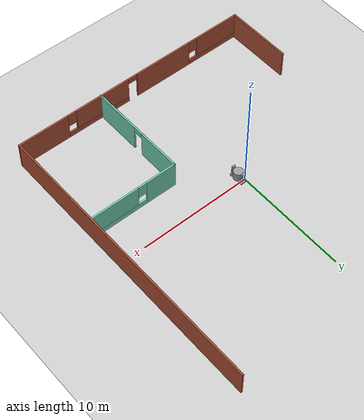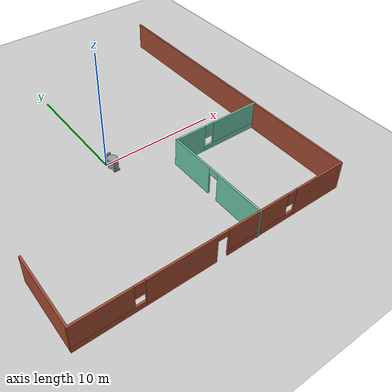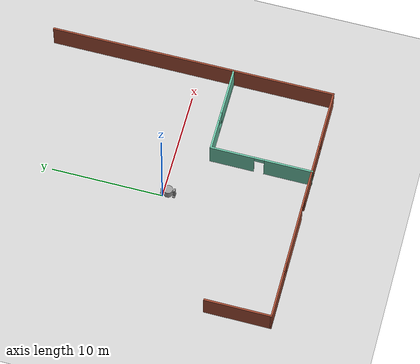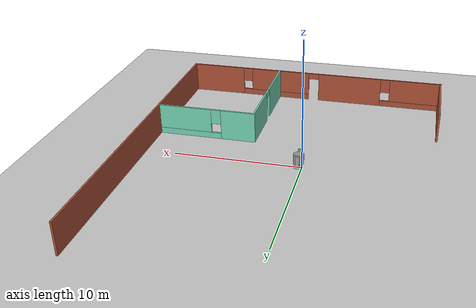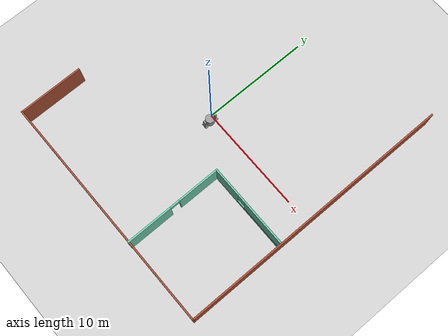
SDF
<sdf version="1.6">
 <world name="default">
  <model name="ground_plane">
   <static>1</static>
   <link name="link">
    <collision name="collision">
     <geometry><plane><normal>0 0 1</normal><size>100 100</size></plane></geometry>
     <surface>
      <contact><collide_bitmask>65535</collide_bitmask></contact>
      <friction><ode><mu>100</mu><mu2>50</mu2></ode></friction>
     </surface>
    </collision>
    <visual name="visual">
     <cast_shadows>0</cast_shadows>
     <geometry><plane><normal>0 0 1</normal><size>100 100</size></plane></geometry>
     <material>
      <script><uri>file://media/materials/scripts/gazebo.material</uri><name>Gazebo/Grey</name></script>
     </material>
    </visual>
   </link>
  </model>
  <model name="robot3">
   <link name="link_2">
    <pose>0.005 -0 -0.064976 0 -0 0</pose>
    <inertial>
     <mass>1</mass>
     <inertia><ixx>0.145833</ixx><ixy>0</ixy><ixz>0</ixz><iyy>0.145833</iyy><iyz>0</iyz><izz>0.125</izz></inertia>
    </inertial>
    <visual name="visual">
     <geometry><cylinder><radius>0.4</radius><length>0.8</length></cylinder></geometry>
     <material>
      <lighting>1</lighting>
      <script><uri>file://media/materials/scripts/gazebo.material</uri><name>Gazebo/Grey</name></script>
      <shader type="pixel"><normal_map>__default__</normal_map></shader>
      <ambient>0.3 0.3 0.3 1</ambient>
      <diffuse>0.7 0.7 0.7 1</diffuse>
      <specular>0.01 0.01 0.01 1</specular>
      <emissive>0 0 0 1</emissive>
     </material>
    </visual>
    <collision name="collision">
     <geometry><cylinder><radius>0.4</radius><length>0.8</length></cylinder></geometry>
     <surface>
      <friction>
       <ode><mu>1</mu><mu2>1</mu2><fdir1>0 0 0</fdir1><slip1>0</slip1><slip2>0</slip2></ode>
       <torsional>
        <coefficient>1</coefficient>
        <patch_radius>0</patch_radius>
        <surface_radius>0</surface_radius>
        <use_patch_radius>1</use_patch_radius>
        <ode><slip>0</slip></ode>
       </torsional>
      </friction>
      <bounce><restitution_coefficient>0</restitution_coefficient><threshold>1e+06</threshold></bounce>
      <contact>
       <collide_without_contact>0</collide_without_contact>
       <collide_without_contact_bitmask>1</collide_without_contact_bitmask>
       <collide_bitmask>1</collide_bitmask>
       <ode>
        <soft_cfm>0</soft_cfm>
        <soft_erp>0.2</soft_erp>
        <kp>1e+13</kp>
        <kd>1</kd>
        <max_vel>0.01</max_vel>
        <min_depth>0</min_depth>
       </ode>
       <bullet>
        <split_impulse>1</split_impulse>
        <split_impulse_penetration_threshold>-0.01</split_impulse_penetration_threshold>
        <soft_cfm>0</soft_cfm>
        <soft_erp>0.2</soft_erp>
        <kp>1e+13</kp>
        <kd>1</kd>
       </bullet>
      </contact>
     </surface>
    </collision>
   </link>
   <link name="link_0">
    <pose>0.00499 0.565134 -0.515032 -0.000625 0 -0.000608</pose>
    <inertial>
     <mass>1</mass>
     <inertia>
      <ixx>0.166667</ixx>
      <ixy>0</ixy>
      <ixz>0</ixz>
      <iyy>0.166667</iyy>
      <iyz>0</iyz>
      <izz>0.166667</izz>
     </inertia>
    </inertial>
    <visual name="visual">
     <geometry><box><size>0.5 0.25 0.1</size></box></geometry>
     <material>
      <lighting>1</lighting>
      <script><uri>file://media/materials/scripts/gazebo.material</uri><name>Gazebo/Grey</name></script>
      <shader type="pixel"><normal_map>__default__</normal_map></shader>
      <ambient>0.3 0.3 0.3 1</ambient>
      <diffuse>0.7 0.7 0.7 1</diffuse>
      <specular>0.01 0.01 0.01 1</specular>
      <emissive>0 0 0 1</emissive>
     </material>
    </visual>
    <collision name="collision">
     <geometry><box><size>0.5 0.25 0.1</size></box></geometry>
     <surface>
      <friction>
       <ode><mu>1</mu><mu2>1</mu2><fdir1>0 0 0</fdir1><slip1>0</slip1><slip2>0</slip2></ode>
       <torsional>
        <coefficient>1</coefficient>
        <patch_radius>0</patch_radius>
        <surface_radius>0</surface_radius>
        <use_patch_radius>1</use_patch_radius>
        <ode><slip>0</slip></ode>
       </torsional>
      </friction>
      <bounce><restitution_coefficient>0</restitution_coefficient><threshold>1e+06</threshold></bounce>
      <contact>
       <collide_without_contact>0</collide_without_contact>
       <collide_without_contact_bitmask>1</collide_without_contact_bitmask>
       <collide_bitmask>1</collide_bitmask>
       <ode>
        <soft_cfm>0</soft_cfm>
        <soft_erp>0.2</soft_erp>
        <kp>1e+13</kp>
        <kd>1</kd>
        <max_vel>0.01</max_vel>
        <min_depth>0</min_depth>
       </ode>
       <bullet>
        <split_impulse>1</split_impulse>
        <split_impulse_penetration_threshold>-0.01</split_impulse_penetration_threshold>
        <soft_cfm>0</soft_cfm>
        <soft_erp>0.2</soft_erp>
        <kp>1e+13</kp>
        <kd>1</kd>
       </bullet>
      </contact>
     </surface>
    </collision>
   </link>
   <link name="link_0_clone">
    <pose>0.00499 -0.535072 -0.514954 -0.00125 -1e-06 -0.001216</pose>
    <inertial>
     <mass>1</mass>
     <inertia>
      <ixx>0.166667</ixx>
      <ixy>0</ixy>
      <ixz>0</ixz>
      <iyy>0.166667</iyy>
      <iyz>0</iyz>
      <izz>0.166667</izz>
     </inertia>
    </inertial>
    <visual name="visual">
     <geometry><box><size>0.5 0.25 0.1</size></box></geometry>
     <material>
      <lighting>1</lighting>
      <script><uri>file://media/materials/scripts/gazebo.material</uri><name>Gazebo/Grey</name></script>
      <shader type="pixel"><normal_map>__default__</normal_map></shader>
      <ambient>0.3 0.3 0.3 1</ambient>
      <diffuse>0.7 0.7 0.7 1</diffuse>
      <specular>0.01 0.01 0.01 1</specular>
      <emissive>0 0 0 1</emissive>
     </material>
    </visual>
    <collision name="collision">
     <geometry><box><size>0.5 0.25 0.1</size></box></geometry>
     <surface>
      <friction>
       <ode><mu>1</mu><mu2>1</mu2><fdir1>0 0 0</fdir1><slip1>0</slip1><slip2>0</slip2></ode>
       <torsional>
        <coefficient>1</coefficient>
        <patch_radius>0</patch_radius>
        <surface_radius>0</surface_radius>
        <use_patch_radius>1</use_patch_radius>
        <ode><slip>0</slip></ode>
       </torsional>
      </friction>
      <bounce><restitution_coefficient>0</restitution_coefficient><threshold>1e+06</threshold></bounce>
      <contact>
       <collide_without_contact>0</collide_without_contact>
       <collide_without_contact_bitmask>1</collide_without_contact_bitmask>
       <collide_bitmask>1</collide_bitmask>
       <ode>
        <soft_cfm>0</soft_cfm>
        <soft_erp>0.2</soft_erp>
        <kp>1e+13</kp>
        <kd>1</kd>
        <max_vel>0.01</max_vel>
        <min_depth>0</min_depth>
       </ode>
       <bullet>
        <split_impulse>1</split_impulse>
        <split_impulse_penetration_threshold>-0.01</split_impulse_penetration_threshold>
        <soft_cfm>0</soft_cfm>
        <soft_erp>0.2</soft_erp>
        <kp>1e+13</kp>
        <kd>1</kd>
       </bullet>
      </contact>
     </surface>
    </collision>
   </link>
   <link name="link_3">
    <pose>-0.015 -1e-06 0.194928 1.5707 -0 0</pose>
    <inertial>
     <mass>1</mass>
     <inertia><ixx>0.145833</ixx><ixy>0</ixy><ixz>0</ixz><iyy>0.145833</iyy><iyz>0</iyz><izz>0.125</izz></inertia>
    </inertial>
    <visual name="visual">
     <geometry><cylinder><radius>0.1</radius><length>1.25</length></cylinder></geometry>
     <material>
      <lighting>1</lighting>
      <script><uri>file://media/materials/scripts/gazebo.material</uri><name>Gazebo/Grey</name></script>
      <shader type="pixel"><normal_map>__default__</normal_map></shader>
      <ambient>0.3 0.3 0.3 1</ambient>
      <diffuse>0.7 0.7 0.7 1</diffuse>
      <specular>0.01 0.01 0.01 1</specular>
      <emissive>0 0 0 1</emissive>
     </material>
    </visual>
    <collision name="collision">
     <geometry><cylinder><radius>0.1</radius><length>1.25</length></cylinder></geometry>
     <surface>
      <friction>
       <ode><mu>1</mu><mu2>1</mu2><fdir1>0 0 0</fdir1><slip1>0</slip1><slip2>0</slip2></ode>
       <torsional>
        <coefficient>1</coefficient>
        <patch_radius>0</patch_radius>
        <surface_radius>0</surface_radius>
        <use_patch_radius>1</use_patch_radius>
        <ode><slip>0</slip></ode>
       </torsional>
      </friction>
      <bounce><restitution_coefficient>0</restitution_coefficient><threshold>1e+06</threshold></bounce>
      <contact>
       <collide_without_contact>0</collide_without_contact>
       <collide_without_contact_bitmask>1</collide_without_contact_bitmask>
       <collide_bitmask>1</collide_bitmask>
       <ode>
        <soft_cfm>0</soft_cfm>
        <soft_erp>0.2</soft_erp>
        <kp>1e+13</kp>
        <kd>1</kd>
        <max_vel>0.01</max_vel>
        <min_depth>0</min_depth>
       </ode>
       <bullet>
        <split_impulse>1</split_impulse>
        <split_impulse_penetration_threshold>-0.01</split_impulse_penetration_threshold>
        <soft_cfm>0</soft_cfm>
        <soft_erp>0.2</soft_erp>
        <kp>1e+13</kp>
        <kd>1</kd>
       </bullet>
      </contact>
     </surface>
    </collision>
   </link>
   <link name="link_4">
    <pose>0.005 -0.550011 -0.064976 0 -0 0</pose>
    <inertial>
     <mass>1</mass>
     <inertia>
      <ixx>0.166667</ixx>
      <ixy>0</ixy>
      <ixz>0</ixz>
      <iyy>0.166667</iyy>
      <iyz>0</iyz>
      <izz>0.166667</izz>
     </inertia>
    </inertial>
    <visual name="visual">
     <geometry><box><size>0.3 0.15 1</size></box></geometry>
     <material>
      <lighting>1</lighting>
      <script><uri>file://media/materials/scripts/gazebo.material</uri><name>Gazebo/Grey</name></script>
      <shader type="pixel"><normal_map>__default__</normal_map></shader>
      <ambient>0.3 0.3 0.3 1</ambient>
      <diffuse>0.7 0.7 0.7 1</diffuse>
      <specular>0.01 0.01 0.01 1</specular>
      <emissive>0 0 0 1</emissive>
     </material>
    </visual>
    <collision name="collision">
     <geometry><box><size>0.3 0.15 1</size></box></geometry>
     <surface>
      <friction>
       <ode><mu>1</mu><mu2>1</mu2><fdir1>0 0 0</fdir1><slip1>0</slip1><slip2>0</slip2></ode>
       <torsional>
        <coefficient>1</coefficient>
        <patch_radius>0</patch_radius>
        <surface_radius>0</surface_radius>
        <use_patch_radius>1</use_patch_radius>
        <ode><slip>0</slip></ode>
       </torsional>
      </friction>
      <bounce><restitution_coefficient>0</restitution_coefficient><threshold>1e+06</threshold></bounce>
      <contact>
       <collide_without_contact>0</collide_without_contact>
       <collide_without_contact_bitmask>1</collide_without_contact_bitmask>
       <collide_bitmask>1</collide_bitmask>
       <ode>
        <soft_cfm>0</soft_cfm>
        <soft_erp>0.2</soft_erp>
        <kp>1e+13</kp>
        <kd>1</kd>
        <max_vel>0.01</max_vel>
        <min_depth>0</min_depth>
       </ode>
       <bullet>
        <split_impulse>1</split_impulse>
        <split_impulse_penetration_threshold>-0.01</split_impulse_penetration_threshold>
        <soft_cfm>0</soft_cfm>
        <soft_erp>0.2</soft_erp>
        <kp>1e+13</kp>
        <kd>1</kd>
       </bullet>
      </contact>
     </surface>
    </collision>
   </link>
   <link name="link_4_clone">
    <pose>0.005 0.550012 -0.064976 0 -0 0</pose>
    <inertial>
     <mass>1</mass>
     <inertia>
      <ixx>0.166667</ixx>
      <ixy>0</ixy>
      <ixz>0</ixz>
      <iyy>0.166667</iyy>
      <iyz>0</iyz>
      <izz>0.166667</izz>
     </inertia>
    </inertial>
    <visual name="visual">
     <geometry><box><size>0.3 0.15 1</size></box></geometry>
     <material>
      <lighting>1</lighting>
      <script><uri>file://media/materials/scripts/gazebo.material</uri><name>Gazebo/Grey</name></script>
      <shader type="pixel"><normal_map>__default__</normal_map></shader>
      <ambient>0.3 0.3 0.3 1</ambient>
      <diffuse>0.7 0.7 0.7 1</diffuse>
      <specular>0.01 0.01 0.01 1</specular>
      <emissive>0 0 0 1</emissive>
     </material>
    </visual>
    <collision name="collision">
     <geometry><box><size>0.3 0.15 1</size></box></geometry>
     <surface>
      <friction>
       <ode><mu>1</mu><mu2>1</mu2><fdir1>0 0 0</fdir1><slip1>0</slip1><slip2>0</slip2></ode>
       <torsional>
        <coefficient>1</coefficient>
        <patch_radius>0</patch_radius>
        <surface_radius>0</surface_radius>
        <use_patch_radius>1</use_patch_radius>
        <ode><slip>0</slip></ode>
       </torsional>
      </friction>
      <bounce><restitution_coefficient>0</restitution_coefficient><threshold>1e+06</threshold></bounce>
      <contact>
       <collide_without_contact>0</collide_without_contact>
       <collide_without_contact_bitmask>1</collide_without_contact_bitmask>
       <collide_bitmask>1</collide_bitmask>
       <ode>
        <soft_cfm>0</soft_cfm>
        <soft_erp>0.2</soft_erp>
        <kp>1e+13</kp>
        <kd>1</kd>
        <max_vel>0.01</max_vel>
        <min_depth>0</min_depth>
       </ode>
       <bullet>
        <split_impulse>1</split_impulse>
        <split_impulse_penetration_threshold>-0.01</split_impulse_penetration_threshold>
        <soft_cfm>0</soft_cfm>
        <soft_erp>0.2</soft_erp>
        <kp>1e+13</kp>
        <kd>1</kd>
       </bullet>
      </contact>
     </surface>
    </collision>
   </link>
   <joint name="link_2_JOINT_2" type="revolute">
    <parent>link_2</parent>
    <child>link_3</child>
    <axis>
     <xyz>1 0 0</xyz>
     <use_parent_model_frame>0</use_parent_model_frame>
     <limit>
      <lower>-1.79769e+308</lower>
      <upper>1.79769e+308</upper>
      <effort>-1</effort>
      <velocity>-1</velocity>
     </limit>
     <dynamics>
      <spring_reference>0</spring_reference>
      <spring_stiffness>0</spring_stiffness>
      <damping>0</damping>
      <friction>0</friction>
     </dynamics>
    </axis>
    <physics>
     <ode><limit><cfm>0</cfm><erp>0.2</erp></limit><suspension><cfm>0</cfm><erp>0.2</erp></suspension></ode>
    </physics>
   </joint>
   <joint name="link_3_JOINT_3" type="revolute">
    <parent>link_3</parent>
    <child>link_4</child>
    <axis>
     <xyz>1 0 0</xyz>
     <use_parent_model_frame>0</use_parent_model_frame>
     <limit>
      <lower>-1.79769e+308</lower>
      <upper>1.79769e+308</upper>
      <effort>-1</effort>
      <velocity>-1</velocity>
     </limit>
     <dynamics>
      <spring_reference>0</spring_reference>
      <spring_stiffness>0</spring_stiffness>
      <damping>0</damping>
      <friction>0</friction>
     </dynamics>
    </axis>
    <physics>
     <ode><limit><cfm>0</cfm><erp>0.2</erp></limit><suspension><cfm>0</cfm><erp>0.2</erp></suspension></ode>
    </physics>
   </joint>
   <joint name="link_3_JOINT_4" type="revolute">
    <parent>link_3</parent>
    <child>link_4_clone</child>
    <axis>
     <xyz>1 0 0</xyz>
     <use_parent_model_frame>0</use_parent_model_frame>
     <limit>
      <lower>-1.79769e+308</lower>
      <upper>1.79769e+308</upper>
      <effort>-1</effort>
      <velocity>-1</velocity>
     </limit>
     <dynamics>
      <spring_reference>0</spring_reference>
      <spring_stiffness>0</spring_stiffness>
      <damping>0</damping>
      <friction>0</friction>
     </dynamics>
    </axis>
    <physics>
     <ode><limit><cfm>0</cfm><erp>0.2</erp></limit><suspension><cfm>0</cfm><erp>0.2</erp></suspension></ode>
    </physics>
   </joint>
   <joint name="link_4_JOINT_1" type="fixed">
    <parent>link_4</parent>
    <child>link_0_clone</child>
    <physics>
     <ode><limit><cfm>0</cfm><erp>0.2</erp></limit><suspension><cfm>0</cfm><erp>0.2</erp></suspension></ode>
    </physics>
   </joint>
   <joint name="link_4_clone_JOINT_0" type="fixed">
    <parent>link_4_clone</parent>
    <child>link_0</child>
    <physics>
     <ode><limit><cfm>0</cfm><erp>0.2</erp></limit><suspension><cfm>0</cfm><erp>0.2</erp></suspension></ode>
    </physics>
   </joint>
   <static>0</static>
   <pose>0.334212 -0.437358 0.565023 -0.000323 -1e-06 0.00236</pose>
  </model>
  <model name="Building">
   <link name="Wall_16">
    <pose>3.13852 -8.31175 0 0 -0 1.5708</pose>
    <visual name="Wall_16_Visual_0">
     <pose>-2.44368 0 1.25 0 -0 0</pose>
     <geometry><box><size>4.36265 0.15 2.5</size></box></geometry>
     <material>
      <script><uri>file://media/materials/scripts/gazebo.material</uri><name>Gazebo/Grey</name></script>
      <ambient>0.435294 0.796078 0.67451 1</ambient>
      <shader type="pixel"/>
      <diffuse>0.7 0.7 0.7 1</diffuse>
      <specular>0.01 0.01 0.01 1</specular>
      <emissive>0 0 0 1</emissive>
     </material>
     <meta><layer>0</layer></meta>
    </visual>
    <visual name="Wall_16_Visual_1">
     <pose>2.63132 0 1.25 0 -0 0</pose>
     <geometry><box><size>3.98735 0.15 2.5</size></box></geometry>
     <material>
      <script><uri>file://media/materials/scripts/gazebo.material</uri><name>Gazebo/Grey</name></script>
      <ambient>0.435294 0.796078 0.67451 1</ambient>
      <shader type="pixel"/>
      <diffuse>0.7 0.7 0.7 1</diffuse>
      <specular>0.01 0.01 0.01 1</specular>
      <emissive>0 0 0 1</emissive>
     </material>
     <meta><layer>0</layer></meta>
    </visual>
    <visual name="Wall_16_Visual_2">
     <pose>0.187646 0 2.25 0 -0 0</pose>
     <geometry><box><size>0.9 0.15 0.5</size></box></geometry>
     <material>
      <script><uri>file://media/materials/scripts/gazebo.material</uri><name>Gazebo/Grey</name></script>
      <ambient>0.435294 0.796078 0.67451 1</ambient>
      <shader type="pixel"/>
      <diffuse>0.7 0.7 0.7 1</diffuse>
      <specular>0.01 0.01 0.01 1</specular>
      <emissive>0 0 0 1</emissive>
     </material>
     <meta><layer>0</layer></meta>
    </visual>
    <collision name="Wall_16_Collision_0">
     <pose>-2.44368 0 1.25 0 -0 0</pose>
     <geometry><box><size>4.36265 0.15 2.5</size></box></geometry>
     <surface>
      <friction>
       <ode><mu>1</mu><mu2>1</mu2><fdir1>0 0 0</fdir1><slip1>0</slip1><slip2>0</slip2></ode>
       <torsional>
        <coefficient>1</coefficient>
        <patch_radius>0</patch_radius>
        <surface_radius>0</surface_radius>
        <use_patch_radius>1</use_patch_radius>
        <ode><slip>0</slip></ode>
       </torsional>
      </friction>
      <bounce><restitution_coefficient>0</restitution_coefficient><threshold>1e+06</threshold></bounce>
      <contact>
       <collide_without_contact>0</collide_without_contact>
       <collide_without_contact_bitmask>1</collide_without_contact_bitmask>
       <collide_bitmask>1</collide_bitmask>
       <ode>
        <soft_cfm>0</soft_cfm>
        <soft_erp>0.2</soft_erp>
        <kp>1e+13</kp>
        <kd>1</kd>
        <max_vel>0.01</max_vel>
        <min_depth>0</min_depth>
       </ode>
       <bullet>
        <split_impulse>1</split_impulse>
        <split_impulse_penetration_threshold>-0.01</split_impulse_penetration_threshold>
        <soft_cfm>0</soft_cfm>
        <soft_erp>0.2</soft_erp>
        <kp>1e+13</kp>
        <kd>1</kd>
       </bullet>
      </contact>
     </surface>
    </collision>
    <collision name="Wall_16_Collision_1">
     <pose>2.63132 0 1.25 0 -0 0</pose>
     <geometry><box><size>3.98735 0.15 2.5</size></box></geometry>
     <surface>
      <friction>
       <ode><mu>1</mu><mu2>1</mu2><fdir1>0 0 0</fdir1><slip1>0</slip1><slip2>0</slip2></ode>
       <torsional>
        <coefficient>1</coefficient>
        <patch_radius>0</patch_radius>
        <surface_radius>0</surface_radius>
        <use_patch_radius>1</use_patch_radius>
        <ode><slip>0</slip></ode>
       </torsional>
      </friction>
      <bounce><restitution_coefficient>0</restitution_coefficient><threshold>1e+06</threshold></bounce>
      <contact>
       <collide_without_contact>0</collide_without_contact>
       <collide_without_contact_bitmask>1</collide_without_contact_bitmask>
       <collide_bitmask>1</collide_bitmask>
       <ode>
        <soft_cfm>0</soft_cfm>
        <soft_erp>0.2</soft_erp>
        <kp>1e+13</kp>
        <kd>1</kd>
        <max_vel>0.01</max_vel>
        <min_depth>0</min_depth>
       </ode>
       <bullet>
        <split_impulse>1</split_impulse>
        <split_impulse_penetration_threshold>-0.01</split_impulse_penetration_threshold>
        <soft_cfm>0</soft_cfm>
        <soft_erp>0.2</soft_erp>
        <kp>1e+13</kp>
        <kd>1</kd>
       </bullet>
      </contact>
     </surface>
    </collision>
    <collision name="Wall_16_Collision_2">
     <pose>0.187646 0 2.25 0 -0 0</pose>
     <geometry><box><size>0.9 0.15 0.5</size></box></geometry>
     <surface>
      <friction>
       <ode><mu>1</mu><mu2>1</mu2><fdir1>0 0 0</fdir1><slip1>0</slip1><slip2>0</slip2></ode>
       <torsional>
        <coefficient>1</coefficient>
        <patch_radius>0</patch_radius>
        <surface_radius>0</surface_radius>
        <use_patch_radius>1</use_patch_radius>
        <ode><slip>0</slip></ode>
       </torsional>
      </friction>
      <bounce><restitution_coefficient>0</restitution_coefficient><threshold>1e+06</threshold></bounce>
      <contact>
       <collide_without_contact>0</collide_without_contact>
       <collide_without_contact_bitmask>1</collide_without_contact_bitmask>
       <collide_bitmask>1</collide_bitmask>
       <ode>
        <soft_cfm>0</soft_cfm>
        <soft_erp>0.2</soft_erp>
        <kp>1e+13</kp>
        <kd>1</kd>
        <max_vel>0.01</max_vel>
        <min_depth>0</min_depth>
       </ode>
       <bullet>
        <split_impulse>1</split_impulse>
        <split_impulse_penetration_threshold>-0.01</split_impulse_penetration_threshold>
        <soft_cfm>0</soft_cfm>
        <soft_erp>0.2</soft_erp>
        <kp>1e+13</kp>
        <kd>1</kd>
       </bullet>
      </contact>
     </surface>
    </collision>
   </link>
   <link name="Wall_17">
    <pose>7.06352 -3.76175 0 0 -0 0</pose>
    <visual name="Wall_17_Visual_0">
     <pose>-2.59354 0 1.25 0 -0 0</pose>
     <geometry><box><size>2.81292 0.15 2.5</size></box></geometry>
     <material>
      <script><uri>file://media/materials/scripts/gazebo.material</uri><name>Gazebo/Grey</name></script>
      <ambient>0.435294 0.796078 0.67451 1</ambient>
      <shader type="pixel"/>
      <diffuse>0.7 0.7 0.7 1</diffuse>
      <specular>0.01 0.01 0.01 1</specular>
      <emissive>0 0 0 1</emissive>
     </material>
     <meta><layer>0</layer></meta>
    </visual>
    <visual name="Wall_17_Visual_1">
     <pose>1.40646 0 0.25 0 -0 0</pose>
     <geometry><box><size>5.18708 0.15 0.5</size></box></geometry>
     <material>
      <script><uri>file://media/materials/scripts/gazebo.material</uri><name>Gazebo/Grey</name></script>
      <ambient>0.435294 0.796078 0.67451 1</ambient>
      <shader type="pixel"/>
      <diffuse>0.7 0.7 0.7 1</diffuse>
      <specular>0.01 0.01 0.01 1</specular>
      <emissive>0 0 0 1</emissive>
     </material>
     <meta><layer>0</layer></meta>
    </visual>
    <visual name="Wall_17_Visual_2">
     <pose>1.80646 0 1.5 0 -0 0</pose>
     <geometry><box><size>4.38708 0.15 2</size></box></geometry>
     <material>
      <script><uri>file://media/materials/scripts/gazebo.material</uri><name>Gazebo/Grey</name></script>
      <ambient>0.435294 0.796078 0.67451 1</ambient>
      <shader type="pixel"/>
      <diffuse>0.7 0.7 0.7 1</diffuse>
      <specular>0.01 0.01 0.01 1</specular>
      <emissive>0 0 0 1</emissive>
     </material>
     <meta><layer>0</layer></meta>
    </visual>
    <visual name="Wall_17_Visual_3">
     <pose>-0.787078 0 1.9 0 -0 0</pose>
     <geometry><box><size>0.8 0.15 1.2</size></box></geometry>
     <material>
      <script><uri>file://media/materials/scripts/gazebo.material</uri><name>Gazebo/Grey</name></script>
      <ambient>0.435294 0.796078 0.67451 1</ambient>
      <shader type="pixel"/>
      <diffuse>0.7 0.7 0.7 1</diffuse>
      <specular>0.01 0.01 0.01 1</specular>
      <emissive>0 0 0 1</emissive>
     </material>
     <meta><layer>0</layer></meta>
    </visual>
    <collision name="Wall_17_Collision_0">
     <pose>-2.59354 0 1.25 0 -0 0</pose>
     <geometry><box><size>2.81292 0.15 2.5</size></box></geometry>
     <surface>
      <friction>
       <ode><mu>1</mu><mu2>1</mu2><fdir1>0 0 0</fdir1><slip1>0</slip1><slip2>0</slip2></ode>
       <torsional>
        <coefficient>1</coefficient>
        <patch_radius>0</patch_radius>
        <surface_radius>0</surface_radius>
        <use_patch_radius>1</use_patch_radius>
        <ode><slip>0</slip></ode>
       </torsional>
      </friction>
      <bounce><restitution_coefficient>0</restitution_coefficient><threshold>1e+06</threshold></bounce>
      <contact>
       <collide_without_contact>0</collide_without_contact>
       <collide_without_contact_bitmask>1</collide_without_contact_bitmask>
       <collide_bitmask>1</collide_bitmask>
       <ode>
        <soft_cfm>0</soft_cfm>
        <soft_erp>0.2</soft_erp>
        <kp>1e+13</kp>
        <kd>1</kd>
        <max_vel>0.01</max_vel>
        <min_depth>0</min_depth>
       </ode>
       <bullet>
        <split_impulse>1</split_impulse>
        <split_impulse_penetration_threshold>-0.01</split_impulse_penetration_threshold>
        <soft_cfm>0</soft_cfm>
        <soft_erp>0.2</soft_erp>
        <kp>1e+13</kp>
        <kd>1</kd>
       </bullet>
      </contact>
     </surface>
    </collision>
    <collision name="Wall_17_Collision_1">
     <pose>1.40646 0 0.25 0 -0 0</pose>
     <geometry><box><size>5.18708 0.15 0.5</size></box></geometry>
     <surface>
      <friction>
       <ode><mu>1</mu><mu2>1</mu2><fdir1>0 0 0</fdir1><slip1>0</slip1><slip2>0</slip2></ode>
       <torsional>
        <coefficient>1</coefficient>
        <patch_radius>0</patch_radius>
        <surface_radius>0</surface_radius>
        <use_patch_radius>1</use_patch_radius>
        <ode><slip>0</slip></ode>
       </torsional>
      </friction>
      <bounce><restitution_coefficient>0</restitution_coefficient><threshold>1e+06</threshold></bounce>
      <contact>
       <collide_without_contact>0</collide_without_contact>
       <collide_without_contact_bitmask>1</collide_without_contact_bitmask>
       <collide_bitmask>1</collide_bitmask>
       <ode>
        <soft_cfm>0</soft_cfm>
        <soft_erp>0.2</soft_erp>
        <kp>1e+13</kp>
        <kd>1</kd>
        <max_vel>0.01</max_vel>
        <min_depth>0</min_depth>
       </ode>
       <bullet>
        <split_impulse>1</split_impulse>
        <split_impulse_penetration_threshold>-0.01</split_impulse_penetration_threshold>
        <soft_cfm>0</soft_cfm>
        <soft_erp>0.2</soft_erp>
        <kp>1e+13</kp>
        <kd>1</kd>
       </bullet>
      </contact>
     </surface>
    </collision>
    <collision name="Wall_17_Collision_3">
     <pose>-0.787078 0 1.9 0 -0 0</pose>
     <geometry><box><size>0.8 0.15 1.2</size></box></geometry>
     <surface>
      <friction>
       <ode><mu>1</mu><mu2>1</mu2><fdir1>0 0 0</fdir1><slip1>0</slip1><slip2>0</slip2></ode>
       <torsional>
        <coefficient>1</coefficient>
        <patch_radius>0</patch_radius>
        <surface_radius>0</surface_radius>
        <use_patch_radius>1</use_patch_radius>
        <ode><slip>0</slip></ode>
       </torsional>
      </friction>
      <bounce><restitution_coefficient>0</restitution_coefficient><threshold>1e+06</threshold></bounce>
      <contact>
       <collide_without_contact>0</collide_without_contact>
       <collide_without_contact_bitmask>1</collide_without_contact_bitmask>
       <collide_bitmask>1</collide_bitmask>
       <ode>
        <soft_cfm>0</soft_cfm>
        <soft_erp>0.2</soft_erp>
        <kp>1e+13</kp>
        <kd>1</kd>
        <max_vel>0.01</max_vel>
        <min_depth>0</min_depth>
       </ode>
       <bullet>
        <split_impulse>1</split_impulse>
        <split_impulse_penetration_threshold>-0.01</split_impulse_penetration_threshold>
        <soft_cfm>0</soft_cfm>
        <soft_erp>0.2</soft_erp>
        <kp>1e+13</kp>
        <kd>1</kd>
       </bullet>
      </contact>
     </surface>
    </collision>
    <collision name="Wall_17_Collision_2">
     <pose>1.80646 0 1.5 0 -0 0</pose>
     <geometry><box><size>4.38708 0.15 2</size></box></geometry>
     <surface>
      <friction>
       <ode><mu>1</mu><mu2>1</mu2><fdir1>0 0 0</fdir1><slip1>0</slip1><slip2>0</slip2></ode>
       <torsional>
        <coefficient>1</coefficient>
        <patch_radius>0</patch_radius>
        <surface_radius>0</surface_radius>
        <use_patch_radius>1</use_patch_radius>
        <ode><slip>0</slip></ode>
       </torsional>
      </friction>
      <bounce><restitution_coefficient>0</restitution_coefficient><threshold>1e+06</threshold></bounce>
      <contact>
       <collide_without_contact>0</collide_without_contact>
       <collide_without_contact_bitmask>1</collide_without_contact_bitmask>
       <collide_bitmask>1</collide_bitmask>
       <ode>
        <soft_cfm>0</soft_cfm>
        <soft_erp>0.2</soft_erp>
        <kp>1e+13</kp>
        <kd>1</kd>
        <max_vel>0.01</max_vel>
        <min_depth>0</min_depth>
       </ode>
       <bullet>
        <split_impulse>1</split_impulse>
        <split_impulse_penetration_threshold>-0.01</split_impulse_penetration_threshold>
        <soft_cfm>0</soft_cfm>
        <soft_erp>0.2</soft_erp>
        <kp>1e+13</kp>
        <kd>1</kd>
       </bullet>
      </contact>
     </surface>
    </collision>
   </link>
   <link name="Wall_4">
    <pose>11.05 -0.022461 0 0 0 -1.5708</pose>
    <visual name="Wall_4_Visual">
     <pose>0 0 1.25 0 -0 0</pose>
     <geometry><box><size>25.75 0.15 2.5</size></box></geometry>
     <material>
      <script><uri>file://media/materials/scripts/gazebo.material</uri><name>Gazebo/Bricks</name></script>
      <ambient>1 1 1 1</ambient>
      <shader type="pixel"/>
      <diffuse>1 1 1 1</diffuse>
      <specular>0.2 0.2 0.2 1</specular>
      <emissive>0 0 0 1</emissive>
     </material>
     <meta><layer>0</layer></meta>
    </visual>
    <collision name="Wall_4_Collision">
     <pose>0 0 1.25 0 -0 0</pose>
     <geometry><box><size>25.75 0.15 2.5</size></box></geometry>
     <surface>
      <friction>
       <ode><mu>1</mu><mu2>1</mu2><fdir1>0 0 0</fdir1><slip1>0</slip1><slip2>0</slip2></ode>
       <torsional>
        <coefficient>1</coefficient>
        <patch_radius>0</patch_radius>
        <surface_radius>0</surface_radius>
        <use_patch_radius>1</use_patch_radius>
        <ode><slip>0</slip></ode>
       </torsional>
      </friction>
      <bounce><restitution_coefficient>0</restitution_coefficient><threshold>1e+06</threshold></bounce>
      <contact>
       <collide_without_contact>0</collide_without_contact>
       <collide_without_contact_bitmask>1</collide_without_contact_bitmask>
       <collide_bitmask>1</collide_bitmask>
       <ode>
        <soft_cfm>0</soft_cfm>
        <soft_erp>0.2</soft_erp>
        <kp>1e+13</kp>
        <kd>1</kd>
        <max_vel>0.01</max_vel>
        <min_depth>0</min_depth>
       </ode>
       <bullet>
        <split_impulse>1</split_impulse>
        <split_impulse_penetration_threshold>-0.01</split_impulse_penetration_threshold>
        <soft_cfm>0</soft_cfm>
        <soft_erp>0.2</soft_erp>
        <kp>1e+13</kp>
        <kd>1</kd>
       </bullet>
      </contact>
     </surface>
    </collision>
   </link>
   <link name="Wall_5">
    <pose>0 -12.8225 0 0 -0 3.14159</pose>
    <visual name="Wall_5_Visual_0">
     <pose>-8.79588 0 1.25 0 -0 0</pose>
     <geometry><box><size>4.65824 0.15 2.5</size></box></geometry>
     <material>
      <script><uri>file://media/materials/scripts/gazebo.material</uri><name>Gazebo/Bricks</name></script>
      <ambient>1 1 1 1</ambient>
      <shader type="pixel"/>
      <diffuse>1 1 1 1</diffuse>
      <specular>0.2 0.2 0.2 1</specular>
      <emissive>0 0 0 1</emissive>
     </material>
     <meta><layer>0</layer></meta>
    </visual>
    <visual name="Wall_5_Visual_2">
     <pose>-3.45759 0 0.25 0 -0 0</pose>
     <geometry><box><size>6.01834 0.15 0.5</size></box></geometry>
     <material>
      <script><uri>file://media/materials/scripts/gazebo.material</uri><name>Gazebo/Bricks</name></script>
      <ambient>1 1 1 1</ambient>
      <shader type="pixel"/>
      <diffuse>1 1 1 1</diffuse>
      <specular>0.2 0.2 0.2 1</specular>
      <emissive>0 0 0 1</emissive>
     </material>
     <meta><layer>0</layer></meta>
    </visual>
    <visual name="Wall_5_Visual_1">
     <pose>3.20234 0 1.25 0 -0 0</pose>
     <geometry><box><size>5.50152 0.15 2.5</size></box></geometry>
     <material>
      <script><uri>file://media/materials/scripts/gazebo.material</uri><name>Gazebo/Bricks</name></script>
      <ambient>1 1 1 1</ambient>
      <shader type="pixel"/>
      <diffuse>1 1 1 1</diffuse>
      <specular>0.2 0.2 0.2 1</specular>
      <emissive>0 0 0 1</emissive>
     </material>
     <meta><layer>0</layer></meta>
    </visual>
    <visual name="Wall_5_Visual_3">
     <pose>8.53905 0 0.25 0 -0 0</pose>
     <geometry><box><size>5.1719 0.15 0.5</size></box></geometry>
     <material>
      <script><uri>file://media/materials/scripts/gazebo.material</uri><name>Gazebo/Bricks</name></script>
      <ambient>1 1 1 1</ambient>
      <shader type="pixel"/>
      <diffuse>1 1 1 1</diffuse>
      <specular>0.2 0.2 0.2 1</specular>
      <emissive>0 0 0 1</emissive>
     </material>
     <meta><layer>0</layer></meta>
    </visual>
    <visual name="Wall_5_Visual_4">
     <pose>-3.05759 0 1.5 0 -0 0</pose>
     <geometry><box><size>5.21834 0.15 2</size></box></geometry>
     <material>
      <script><uri>file://media/materials/scripts/gazebo.material</uri><name>Gazebo/Bricks</name></script>
      <ambient>1 1 1 1</ambient>
      <shader type="pixel"/>
      <diffuse>1 1 1 1</diffuse>
      <specular>0.2 0.2 0.2 1</specular>
      <emissive>0 0 0 1</emissive>
     </material>
     <meta><layer>0</layer></meta>
    </visual>
    <visual name="Wall_5_Visual_5">
     <pose>-3.05759 0 1.5 0 -0 0</pose>
     <geometry><box><size>5.21834 0.15 2</size></box></geometry>
     <material>
      <script><uri>file://media/materials/scripts/gazebo.material</uri><name>Gazebo/Bricks</name></script>
      <ambient>1 1 1 1</ambient>
      <shader type="pixel"/>
      <diffuse>1 1 1 1</diffuse>
      <specular>0.2 0.2 0.2 1</specular>
      <emissive>0 0 0 1</emissive>
     </material>
     <meta><layer>0</layer></meta>
    </visual>
    <visual name="Wall_5_Visual_6">
     <pose>8.93905 0 1.5 0 -0 0</pose>
     <geometry><box><size>4.3719 0.15 2</size></box></geometry>
     <material>
      <script><uri>file://media/materials/scripts/gazebo.material</uri><name>Gazebo/Bricks</name></script>
      <ambient>1 1 1 1</ambient>
      <shader type="pixel"/>
      <diffuse>1 1 1 1</diffuse>
      <specular>0.2 0.2 0.2 1</specular>
      <emissive>0 0 0 1</emissive>
     </material>
     <meta><layer>0</layer></meta>
    </visual>
    <visual name="Wall_5_Visual_7">
     <pose>-6.06676 0 1.9 0 -0 0</pose>
     <geometry><box><size>0.8 0.15 1.2</size></box></geometry>
     <material>
      <script><uri>file://media/materials/scripts/gazebo.material</uri><name>Gazebo/Bricks</name></script>
      <ambient>1 1 1 1</ambient>
      <shader type="pixel"/>
      <diffuse>1 1 1 1</diffuse>
      <specular>0.2 0.2 0.2 1</specular>
      <emissive>0 0 0 1</emissive>
     </material>
     <meta><layer>0</layer></meta>
    </visual>
    <visual name="Wall_5_Visual_8">
     <pose>6.3531 0 1.9 0 -0 0</pose>
     <geometry><box><size>0.8 0.15 1.2</size></box></geometry>
     <material>
      <script><uri>file://media/materials/scripts/gazebo.material</uri><name>Gazebo/Bricks</name></script>
      <ambient>1 1 1 1</ambient>
      <shader type="pixel"/>
      <diffuse>1 1 1 1</diffuse>
      <specular>0.2 0.2 0.2 1</specular>
      <emissive>0 0 0 1</emissive>
     </material>
     <meta><layer>0</layer></meta>
    </visual>
    <visual name="Wall_5_Visual_9">
     <pose>0.001579 0 2.25 0 -0 0</pose>
     <geometry><box><size>0.9 0.15 0.5</size></box></geometry>
     <material>
      <script><uri>file://media/materials/scripts/gazebo.material</uri><name>Gazebo/Bricks</name></script>
      <ambient>1 1 1 1</ambient>
      <shader type="pixel"/>
      <diffuse>1 1 1 1</diffuse>
      <specular>0.2 0.2 0.2 1</specular>
      <emissive>0 0 0 1</emissive>
     </material>
     <meta><layer>0</layer></meta>
    </visual>
    <visual name="Wall_5_Visual_10">
     <pose>0.001579 0 2.25 0 -0 0</pose>
     <geometry><box><size>0.9 0.15 0.5</size></box></geometry>
     <material>
      <script><uri>file://media/materials/scripts/gazebo.material</uri><name>Gazebo/Bricks</name></script>
      <ambient>1 1 1 1</ambient>
      <shader type="pixel"/>
      <diffuse>1 1 1 1</diffuse>
      <specular>0.2 0.2 0.2 1</specular>
      <emissive>0 0 0 1</emissive>
     </material>
     <meta><layer>0</layer></meta>
    </visual>
    <collision name="Wall_5_Collision_0">
     <pose>-8.79588 0 1.25 0 -0 0</pose>
     <geometry><box><size>4.65824 0.15 2.5</size></box></geometry>
     <surface>
      <friction>
       <ode><mu>1</mu><mu2>1</mu2><fdir1>0 0 0</fdir1><slip1>0</slip1><slip2>0</slip2></ode>
       <torsional>
        <coefficient>1</coefficient>
        <patch_radius>0</patch_radius>
        <surface_radius>0</surface_radius>
        <use_patch_radius>1</use_patch_radius>
        <ode><slip>0</slip></ode>
       </torsional>
      </friction>
      <bounce><restitution_coefficient>0</restitution_coefficient><threshold>1e+06</threshold></bounce>
      <contact>
       <collide_without_contact>0</collide_without_contact>
       <collide_without_contact_bitmask>1</collide_without_contact_bitmask>
       <collide_bitmask>1</collide_bitmask>
       <ode>
        <soft_cfm>0</soft_cfm>
        <soft_erp>0.2</soft_erp>
        <kp>1e+13</kp>
        <kd>1</kd>
        <max_vel>0.01</max_vel>
        <min_depth>0</min_depth>
       </ode>
       <bullet>
        <split_impulse>1</split_impulse>
        <split_impulse_penetration_threshold>-0.01</split_impulse_penetration_threshold>
        <soft_cfm>0</soft_cfm>
        <soft_erp>0.2</soft_erp>
        <kp>1e+13</kp>
        <kd>1</kd>
       </bullet>
      </contact>
     </surface>
    </collision>
    <collision name="Wall_5_Collision_3">
     <pose>8.53905 0 0.25 0 -0 0</pose>
     <geometry><box><size>5.1719 0.15 0.5</size></box></geometry>
     <surface>
      <friction>
       <ode><mu>1</mu><mu2>1</mu2><fdir1>0 0 0</fdir1><slip1>0</slip1><slip2>0</slip2></ode>
       <torsional>
        <coefficient>1</coefficient>
        <patch_radius>0</patch_radius>
        <surface_radius>0</surface_radius>
        <use_patch_radius>1</use_patch_radius>
        <ode><slip>0</slip></ode>
       </torsional>
      </friction>
      <bounce><restitution_coefficient>0</restitution_coefficient><threshold>1e+06</threshold></bounce>
      <contact>
       <collide_without_contact>0</collide_without_contact>
       <collide_without_contact_bitmask>1</collide_without_contact_bitmask>
       <collide_bitmask>1</collide_bitmask>
       <ode>
        <soft_cfm>0</soft_cfm>
        <soft_erp>0.2</soft_erp>
        <kp>1e+13</kp>
        <kd>1</kd>
        <max_vel>0.01</max_vel>
        <min_depth>0</min_depth>
       </ode>
       <bullet>
        <split_impulse>1</split_impulse>
        <split_impulse_penetration_threshold>-0.01</split_impulse_penetration_threshold>
        <soft_cfm>0</soft_cfm>
        <soft_erp>0.2</soft_erp>
        <kp>1e+13</kp>
        <kd>1</kd>
       </bullet>
      </contact>
     </surface>
    </collision>
    <collision name="Wall_5_Collision_2">
     <pose>-3.45759 0 0.25 0 -0 0</pose>
     <geometry><box><size>6.01834 0.15 0.5</size></box></geometry>
     <surface>
      <friction>
       <ode><mu>1</mu><mu2>1</mu2><fdir1>0 0 0</fdir1><slip1>0</slip1><slip2>0</slip2></ode>
       <torsional>
        <coefficient>1</coefficient>
        <patch_radius>0</patch_radius>
        <surface_radius>0</surface_radius>
        <use_patch_radius>1</use_patch_radius>
        <ode><slip>0</slip></ode>
       </torsional>
      </friction>
      <bounce><restitution_coefficient>0</restitution_coefficient><threshold>1e+06</threshold></bounce>
      <contact>
       <collide_without_contact>0</collide_without_contact>
       <collide_without_contact_bitmask>1</collide_without_contact_bitmask>
       <collide_bitmask>1</collide_bitmask>
       <ode>
        <soft_cfm>0</soft_cfm>
        <soft_erp>0.2</soft_erp>
        <kp>1e+13</kp>
        <kd>1</kd>
        <max_vel>0.01</max_vel>
        <min_depth>0</min_depth>
       </ode>
       <bullet>
        <split_impulse>1</split_impulse>
        <split_impulse_penetration_threshold>-0.01</split_impulse_penetration_threshold>
        <soft_cfm>0</soft_cfm>
        <soft_erp>0.2</soft_erp>
        <kp>1e+13</kp>
        <kd>1</kd>
       </bullet>
      </contact>
     </surface>
    </collision>
    <collision name="Wall_5_Collision_1">
     <pose>3.20234 0 1.25 0 -0 0</pose>
     <geometry><box><size>5.50152 0.15 2.5</size></box></geometry>
     <surface>
      <friction>
       <ode><mu>1</mu><mu2>1</mu2><fdir1>0 0 0</fdir1><slip1>0</slip1><slip2>0</slip2></ode>
       <torsional>
        <coefficient>1</coefficient>
        <patch_radius>0</patch_radius>
        <surface_radius>0</surface_radius>
        <use_patch_radius>1</use_patch_radius>
        <ode><slip>0</slip></ode>
       </torsional>
      </friction>
      <bounce><restitution_coefficient>0</restitution_coefficient><threshold>1e+06</threshold></bounce>
      <contact>
       <collide_without_contact>0</collide_without_contact>
       <collide_without_contact_bitmask>1</collide_without_contact_bitmask>
       <collide_bitmask>1</collide_bitmask>
       <ode>
        <soft_cfm>0</soft_cfm>
        <soft_erp>0.2</soft_erp>
        <kp>1e+13</kp>
        <kd>1</kd>
        <max_vel>0.01</max_vel>
        <min_depth>0</min_depth>
       </ode>
       <bullet>
        <split_impulse>1</split_impulse>
        <split_impulse_penetration_threshold>-0.01</split_impulse_penetration_threshold>
        <soft_cfm>0</soft_cfm>
        <soft_erp>0.2</soft_erp>
        <kp>1e+13</kp>
        <kd>1</kd>
       </bullet>
      </contact>
     </surface>
    </collision>
    <collision name="Wall_5_Collision_4">
     <pose>-3.05759 0 1.5 0 -0 0</pose>
     <geometry><box><size>5.21834 0.15 2</size></box></geometry>
     <surface>
      <friction>
       <ode><mu>1</mu><mu2>1</mu2><fdir1>0 0 0</fdir1><slip1>0</slip1><slip2>0</slip2></ode>
       <torsional>
        <coefficient>1</coefficient>
        <patch_radius>0</patch_radius>
        <surface_radius>0</surface_radius>
        <use_patch_radius>1</use_patch_radius>
        <ode><slip>0</slip></ode>
       </torsional>
      </friction>
      <bounce><restitution_coefficient>0</restitution_coefficient><threshold>1e+06</threshold></bounce>
      <contact>
       <collide_without_contact>0</collide_without_contact>
       <collide_without_contact_bitmask>1</collide_without_contact_bitmask>
       <collide_bitmask>1</collide_bitmask>
       <ode>
        <soft_cfm>0</soft_cfm>
        <soft_erp>0.2</soft_erp>
        <kp>1e+13</kp>
        <kd>1</kd>
        <max_vel>0.01</max_vel>
        <min_depth>0</min_depth>
       </ode>
       <bullet>
        <split_impulse>1</split_impulse>
        <split_impulse_penetration_threshold>-0.01</split_impulse_penetration_threshold>
        <soft_cfm>0</soft_cfm>
        <soft_erp>0.2</soft_erp>
        <kp>1e+13</kp>
        <kd>1</kd>
       </bullet>
      </contact>
     </surface>
    </collision>
    <collision name="Wall_5_Collision_5">
     <pose>-3.05759 0 1.5 0 -0 0</pose>
     <geometry><box><size>5.21834 0.15 2</size></box></geometry>
     <surface>
      <friction>
       <ode><mu>1</mu><mu2>1</mu2><fdir1>0 0 0</fdir1><slip1>0</slip1><slip2>0</slip2></ode>
       <torsional>
        <coefficient>1</coefficient>
        <patch_radius>0</patch_radius>
        <surface_radius>0</surface_radius>
        <use_patch_radius>1</use_patch_radius>
        <ode><slip>0</slip></ode>
       </torsional>
      </friction>
      <bounce><restitution_coefficient>0</restitution_coefficient><threshold>1e+06</threshold></bounce>
      <contact>
       <collide_without_contact>0</collide_without_contact>
       <collide_without_contact_bitmask>1</collide_without_contact_bitmask>
       <collide_bitmask>1</collide_bitmask>
       <ode>
        <soft_cfm>0</soft_cfm>
        <soft_erp>0.2</soft_erp>
        <kp>1e+13</kp>
        <kd>1</kd>
        <max_vel>0.01</max_vel>
        <min_depth>0</min_depth>
       </ode>
       <bullet>
        <split_impulse>1</split_impulse>
        <split_impulse_penetration_threshold>-0.01</split_impulse_penetration_threshold>
        <soft_cfm>0</soft_cfm>
        <soft_erp>0.2</soft_erp>
        <kp>1e+13</kp>
        <kd>1</kd>
       </bullet>
      </contact>
     </surface>
    </collision>
    <collision name="Wall_5_Collision_7">
     <pose>-6.06676 0 1.9 0 -0 0</pose>
     <geometry><box><size>0.8 0.15 1.2</size></box></geometry>
     <surface>
      <friction>
       <ode><mu>1</mu><mu2>1</mu2><fdir1>0 0 0</fdir1><slip1>0</slip1><slip2>0</slip2></ode>
       <torsional>
        <coefficient>1</coefficient>
        <patch_radius>0</patch_radius>
        <surface_radius>0</surface_radius>
        <use_patch_radius>1</use_patch_radius>
        <ode><slip>0</slip></ode>
       </torsional>
      </friction>
      <bounce><restitution_coefficient>0</restitution_coefficient><threshold>1e+06</threshold></bounce>
      <contact>
       <collide_without_contact>0</collide_without_contact>
       <collide_without_contact_bitmask>1</collide_without_contact_bitmask>
       <collide_bitmask>1</collide_bitmask>
       <ode>
        <soft_cfm>0</soft_cfm>
        <soft_erp>0.2</soft_erp>
        <kp>1e+13</kp>
        <kd>1</kd>
        <max_vel>0.01</max_vel>
        <min_depth>0</min_depth>
       </ode>
       <bullet>
        <split_impulse>1</split_impulse>
        <split_impulse_penetration_threshold>-0.01</split_impulse_penetration_threshold>
        <soft_cfm>0</soft_cfm>
        <soft_erp>0.2</soft_erp>
        <kp>1e+13</kp>
        <kd>1</kd>
       </bullet>
      </contact>
     </surface>
    </collision>
    <collision name="Wall_5_Collision_6">
     <pose>8.93905 0 1.5 0 -0 0</pose>
     <geometry><box><size>4.3719 0.15 2</size></box></geometry>
     <surface>
      <friction>
       <ode><mu>1</mu><mu2>1</mu2><fdir1>0 0 0</fdir1><slip1>0</slip1><slip2>0</slip2></ode>
       <torsional>
        <coefficient>1</coefficient>
        <patch_radius>0</patch_radius>
        <surface_radius>0</surface_radius>
        <use_patch_radius>1</use_patch_radius>
        <ode><slip>0</slip></ode>
       </torsional>
      </friction>
      <bounce><restitution_coefficient>0</restitution_coefficient><threshold>1e+06</threshold></bounce>
      <contact>
       <collide_without_contact>0</collide_without_contact>
       <collide_without_contact_bitmask>1</collide_without_contact_bitmask>
       <collide_bitmask>1</collide_bitmask>
       <ode>
        <soft_cfm>0</soft_cfm>
        <soft_erp>0.2</soft_erp>
        <kp>1e+13</kp>
        <kd>1</kd>
        <max_vel>0.01</max_vel>
        <min_depth>0</min_depth>
       </ode>
       <bullet>
        <split_impulse>1</split_impulse>
        <split_impulse_penetration_threshold>-0.01</split_impulse_penetration_threshold>
        <soft_cfm>0</soft_cfm>
        <soft_erp>0.2</soft_erp>
        <kp>1e+13</kp>
        <kd>1</kd>
       </bullet>
      </contact>
     </surface>
    </collision>
    <collision name="Wall_5_Collision_8">
     <pose>6.3531 0 1.9 0 -0 0</pose>
     <geometry><box><size>0.8 0.15 1.2</size></box></geometry>
     <surface>
      <friction>
       <ode><mu>1</mu><mu2>1</mu2><fdir1>0 0 0</fdir1><slip1>0</slip1><slip2>0</slip2></ode>
       <torsional>
        <coefficient>1</coefficient>
        <patch_radius>0</patch_radius>
        <surface_radius>0</surface_radius>
        <use_patch_radius>1</use_patch_radius>
        <ode><slip>0</slip></ode>
       </torsional>
      </friction>
      <bounce><restitution_coefficient>0</restitution_coefficient><threshold>1e+06</threshold></bounce>
      <contact>
       <collide_without_contact>0</collide_without_contact>
       <collide_without_contact_bitmask>1</collide_without_contact_bitmask>
       <collide_bitmask>1</collide_bitmask>
       <ode>
        <soft_cfm>0</soft_cfm>
        <soft_erp>0.2</soft_erp>
        <kp>1e+13</kp>
        <kd>1</kd>
        <max_vel>0.01</max_vel>
        <min_depth>0</min_depth>
       </ode>
       <bullet>
        <split_impulse>1</split_impulse>
        <split_impulse_penetration_threshold>-0.01</split_impulse_penetration_threshold>
        <soft_cfm>0</soft_cfm>
        <soft_erp>0.2</soft_erp>
        <kp>1e+13</kp>
        <kd>1</kd>
       </bullet>
      </contact>
     </surface>
    </collision>
    <collision name="Wall_5_Collision_9">
     <pose>0.001579 0 2.25 0 -0 0</pose>
     <geometry><box><size>0.9 0.15 0.5</size></box></geometry>
     <surface>
      <friction>
       <ode><mu>1</mu><mu2>1</mu2><fdir1>0 0 0</fdir1><slip1>0</slip1><slip2>0</slip2></ode>
       <torsional>
        <coefficient>1</coefficient>
        <patch_radius>0</patch_radius>
        <surface_radius>0</surface_radius>
        <use_patch_radius>1</use_patch_radius>
        <ode><slip>0</slip></ode>
       </torsional>
      </friction>
      <bounce><restitution_coefficient>0</restitution_coefficient><threshold>1e+06</threshold></bounce>
      <contact>
       <collide_without_contact>0</collide_without_contact>
       <collide_without_contact_bitmask>1</collide_without_contact_bitmask>
       <collide_bitmask>1</collide_bitmask>
       <ode>
        <soft_cfm>0</soft_cfm>
        <soft_erp>0.2</soft_erp>
        <kp>1e+13</kp>
        <kd>1</kd>
        <max_vel>0.01</max_vel>
        <min_depth>0</min_depth>
       </ode>
       <bullet>
        <split_impulse>1</split_impulse>
        <split_impulse_penetration_threshold>-0.01</split_impulse_penetration_threshold>
        <soft_cfm>0</soft_cfm>
        <soft_erp>0.2</soft_erp>
        <kp>1e+13</kp>
        <kd>1</kd>
       </bullet>
      </contact>
     </surface>
    </collision>
    <collision name="Wall_5_Collision_10">
     <pose>0.001579 0 2.25 0 -0 0</pose>
     <geometry><box><size>0.9 0.15 0.5</size></box></geometry>
     <surface>
      <friction>
       <ode><mu>1</mu><mu2>1</mu2><fdir1>0 0 0</fdir1><slip1>0</slip1><slip2>0</slip2></ode>
       <torsional>
        <coefficient>1</coefficient>
        <patch_radius>0</patch_radius>
        <surface_radius>0</surface_radius>
        <use_patch_radius>1</use_patch_radius>
        <ode><slip>0</slip></ode>
       </torsional>
      </friction>
      <bounce><restitution_coefficient>0</restitution_coefficient><threshold>1e+06</threshold></bounce>
      <contact>
       <collide_without_contact>0</collide_without_contact>
       <collide_without_contact_bitmask>1</collide_without_contact_bitmask>
       <collide_bitmask>1</collide_bitmask>
       <ode>
        <soft_cfm>0</soft_cfm>
        <soft_erp>0.2</soft_erp>
        <kp>1e+13</kp>
        <kd>1</kd>
        <max_vel>0.01</max_vel>
        <min_depth>0</min_depth>
       </ode>
       <bullet>
        <split_impulse>1</split_impulse>
        <split_impulse_penetration_threshold>-0.01</split_impulse_penetration_threshold>
        <soft_cfm>0</soft_cfm>
        <soft_erp>0.2</soft_erp>
        <kp>1e+13</kp>
        <kd>1</kd>
       </bullet>
      </contact>
     </surface>
    </collision>
   </link>
   <link name="Wall_6">
    <pose>-11.05 -9.89746 0 0 -0 1.5708</pose>
    <visual name="Wall_6_Visual">
     <pose>0 0 1.25 0 -0 0</pose>
     <geometry><box><size>6 0.15 2.5</size></box></geometry>
     <material>
      <script><uri>file://media/materials/scripts/gazebo.material</uri><name>Gazebo/Bricks</name></script>
      <ambient>1 1 1 1</ambient>
      <shader type="pixel"/>
      <diffuse>1 1 1 1</diffuse>
      <specular>0.2 0.2 0.2 1</specular>
      <emissive>0 0 0 1</emissive>
     </material>
     <meta><layer>0</layer></meta>
    </visual>
    <collision name="Wall_6_Collision">
     <pose>0 0 1.25 0 -0 0</pose>
     <geometry><box><size>6 0.15 2.5</size></box></geometry>
     <surface>
      <friction>
       <ode><mu>1</mu><mu2>1</mu2><fdir1>0 0 0</fdir1><slip1>0</slip1><slip2>0</slip2></ode>
       <torsional>
        <coefficient>1</coefficient>
        <patch_radius>0</patch_radius>
        <surface_radius>0</surface_radius>
        <use_patch_radius>1</use_patch_radius>
        <ode><slip>0</slip></ode>
       </torsional>
      </friction>
      <bounce><restitution_coefficient>0</restitution_coefficient><threshold>1e+06</threshold></bounce>
      <contact>
       <collide_without_contact>0</collide_without_contact>
       <collide_without_contact_bitmask>1</collide_without_contact_bitmask>
       <collide_bitmask>1</collide_bitmask>
       <ode>
        <soft_cfm>0</soft_cfm>
        <soft_erp>0.2</soft_erp>
        <kp>1e+13</kp>
        <kd>1</kd>
        <max_vel>0.01</max_vel>
        <min_depth>0</min_depth>
       </ode>
       <bullet>
        <split_impulse>1</split_impulse>
        <split_impulse_penetration_threshold>-0.01</split_impulse_penetration_threshold>
        <soft_cfm>0</soft_cfm>
        <soft_erp>0.2</soft_erp>
        <kp>1e+13</kp>
        <kd>1</kd>
       </bullet>
      </contact>
     </surface>
    </collision>
   </link>
   <static>1</static>
   <pose>1.3463 0.605074 0 0 -0 0</pose>
  </model>
 </world>
</sdf>
